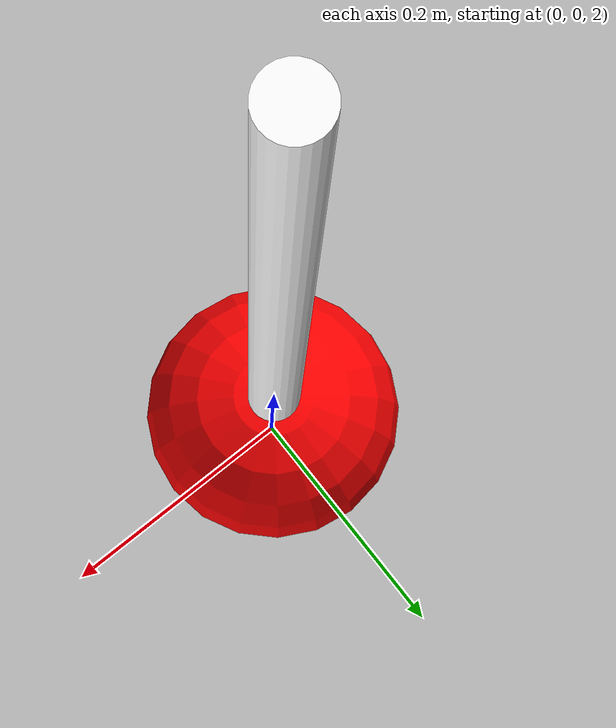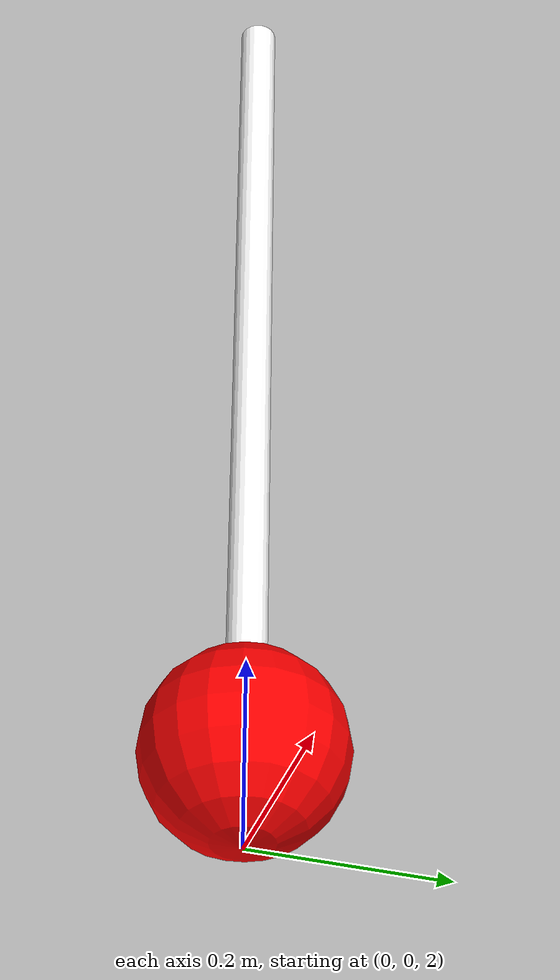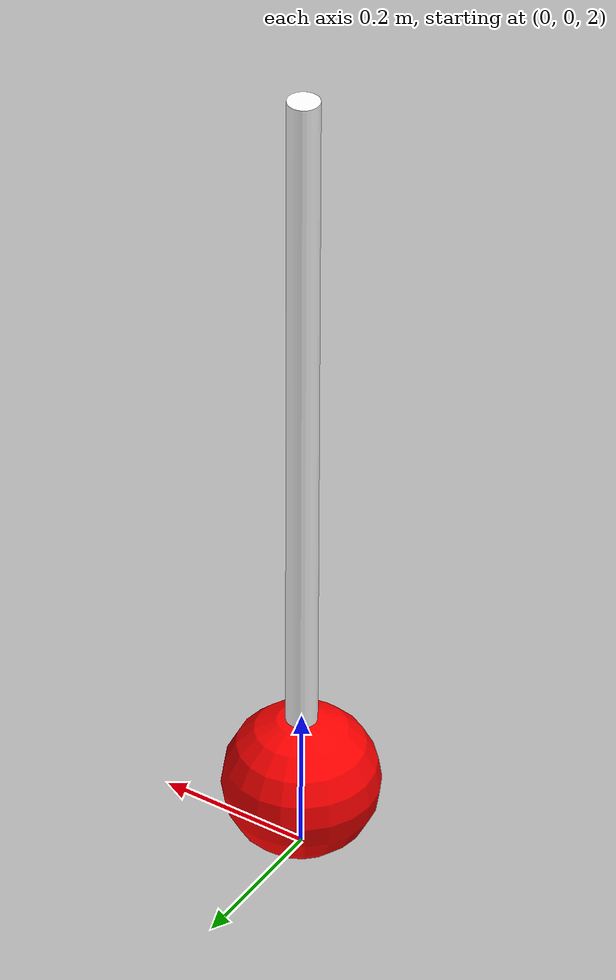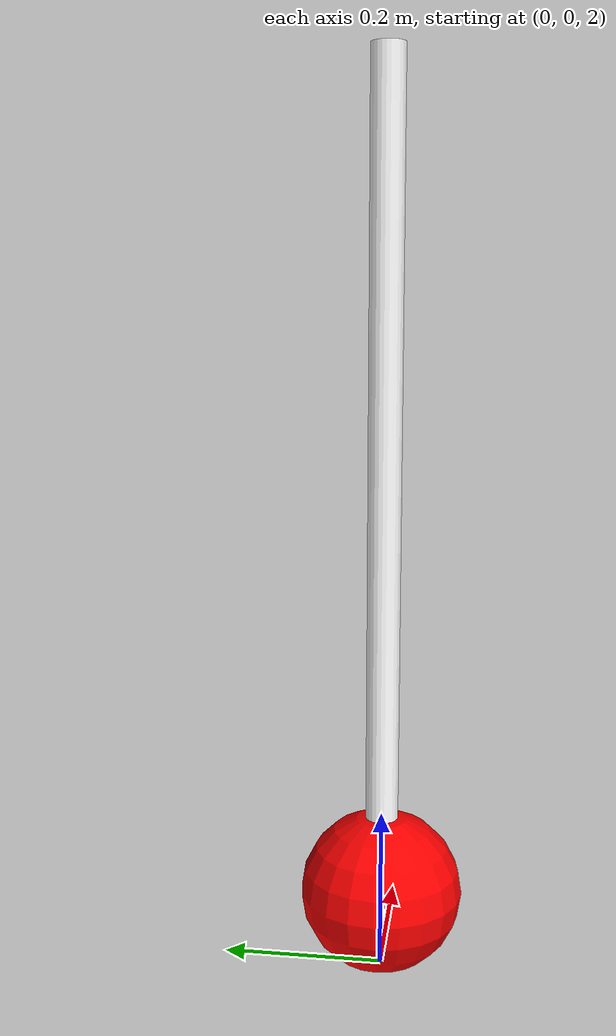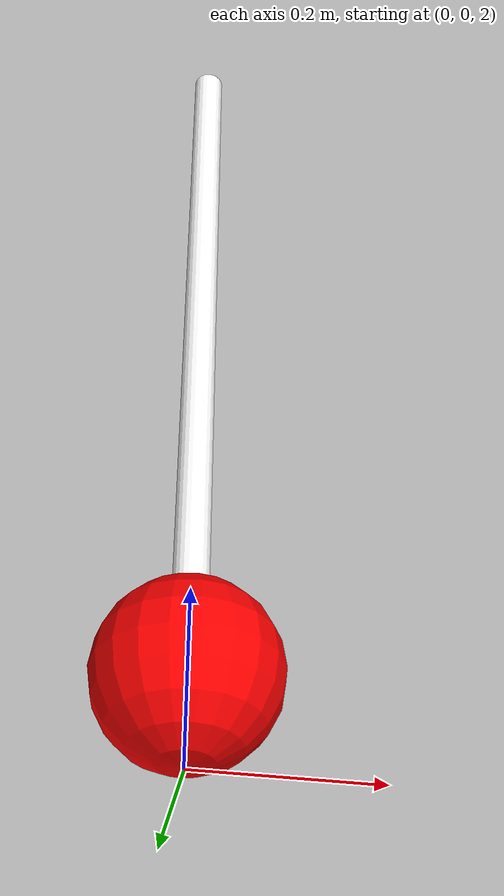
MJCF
<!-- https://mujoco.readthedocs.io/en/latest/overview.html?highlight=hello.xml#examples -->
<mujoco>
  <option gravity = "0 0 -9.81">
    <flag contact="enable" />
  </option >
   <worldbody>
      <light diffuse="0 0 0" pos="0 0 10" dir="0 0 -1"/>
      <geom type="plane" size="2.25 2.25 0.01" rgba="1 1 1 1"/>
      <body pos="0 0 2.6" euler="0 0 0">
         <joint name="joint0" type="hinge" axis = "0 1 0" pos = "0 0 0.5"/>
         <geom type="cylinder" size="0.02 0.5" mass = "0" rgba="1 1 1 1"/>
         <geom type="sphere" pos = "0 0 -0.5" mass = "1" size="0.1" rgba="1 0 0 1"/>
      </body>
   </worldbody>

   <actuator>
     <motor name="torque" joint="joint0"  gear="1" ctrllimited="true" ctrlrange="-100 100"/>
     <position name="position_servo" joint="joint0" kp="0"/>
     <velocity name="velocity_servo" joint="joint0" kv="80"/>
   </actuator>

</mujoco>
